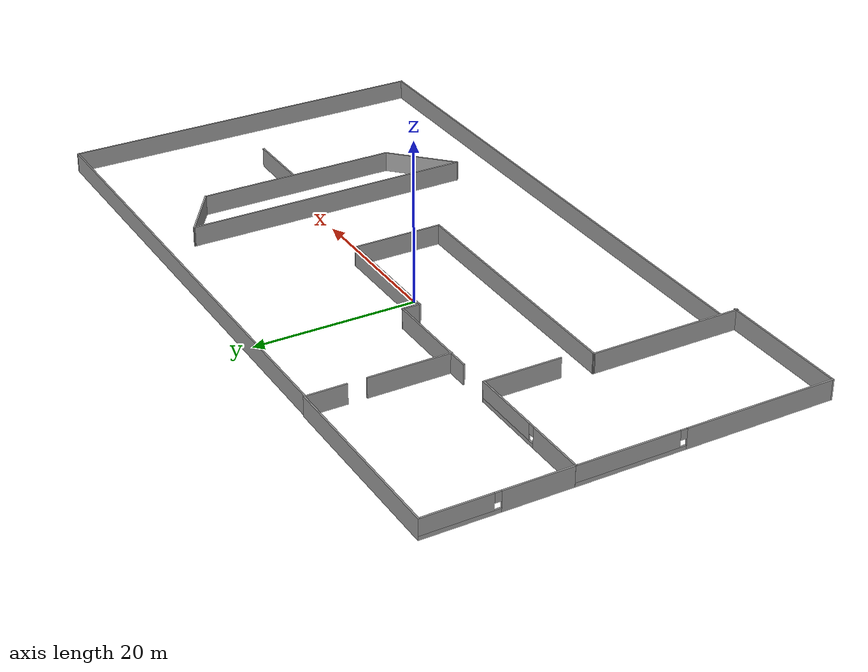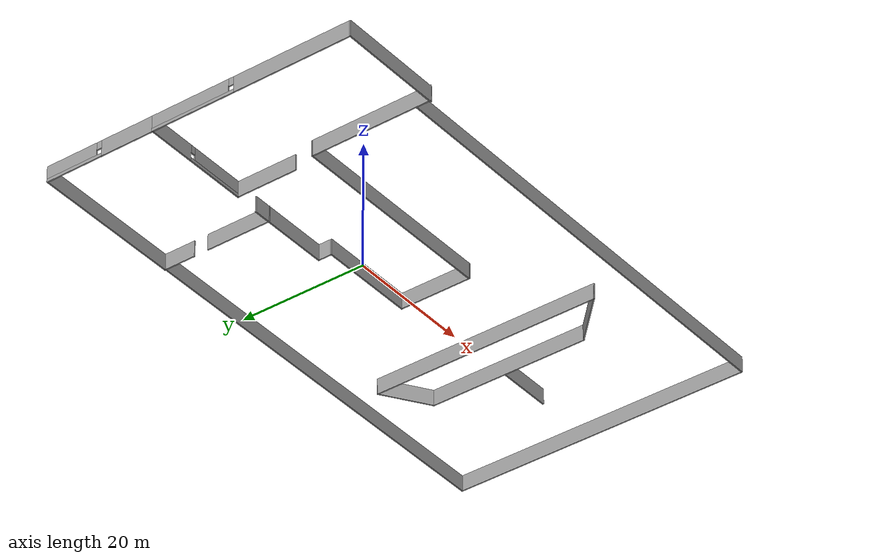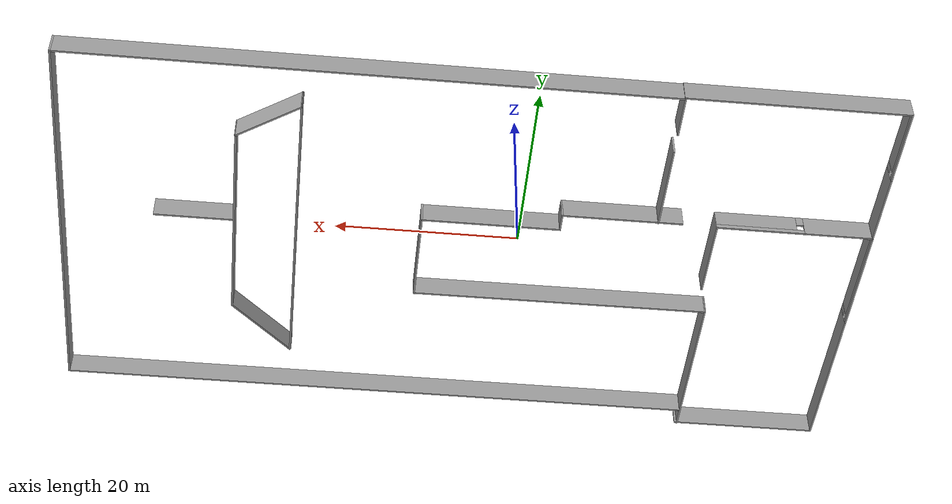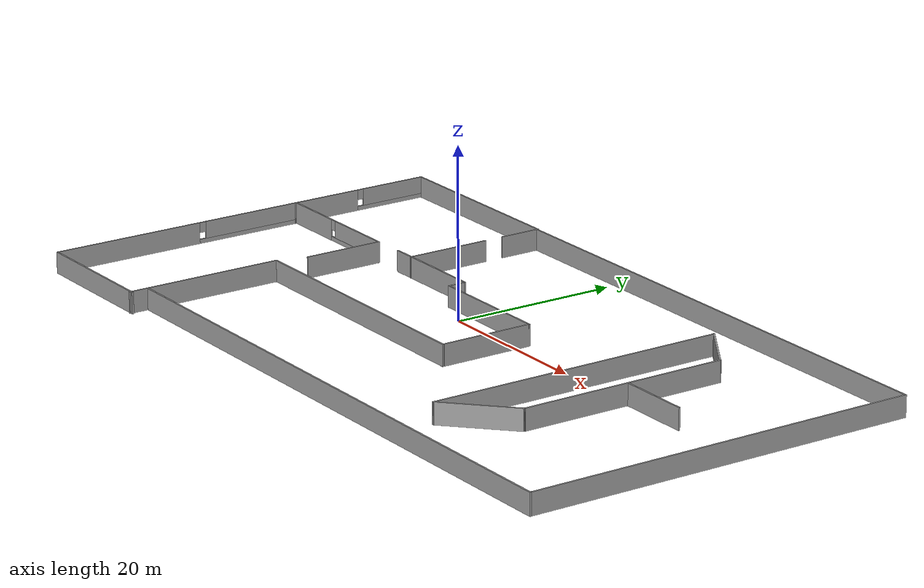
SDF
<?xml version='1.0'?>
<sdf version='1.5'>
  <model name='bunch_of_rooms'>
    <link name='Wall_10'>
      <collision name='Wall_10_Collision'>
        <geometry>
          <box>
            <size>19.0166 0.2 2.5</size>
          </box>
        </geometry>
        <pose>0 0 1.25 0 -0 0</pose>
      </collision>
      <visual name='Wall_10_Visual'>
        <pose>0 0 1.25 0 -0 0</pose>
        <geometry>
          <box>
            <size>19.0166 0.2 2.5</size>
          </box>
        </geometry>
        <material>
          <script>
            <uri>file://media/materials/scripts/gazebo.material</uri>
            <name>Gazebo/Grey</name>
          </script>
        </material>
      </visual>
      <velocity_decay>
        <linear>0</linear>
        <angular>0</angular>
      </velocity_decay>
      <pose>-22.409 -18.5985 0 0 0 -1.5708</pose>
    </link>
    <link name='Wall_12'>
      <collision name='Wall_12_Collision'>
        <geometry>
          <box>
            <size>16.6978 0.2 2.5</size>
          </box>
        </geometry>
        <pose>0 0 1.25 0 -0 0</pose>
      </collision>
      <visual name='Wall_12_Visual'>
        <pose>0 0 1.25 0 -0 0</pose>
        <geometry>
          <box>
            <size>16.6978 0.2 2.5</size>
          </box>
        </geometry>
        <material>
          <script>
            <uri>file://media/materials/scripts/gazebo.material</uri>
            <name>Gazebo/Grey</name>
          </script>
        </material>
      </visual>
      <velocity_decay>
        <linear>0</linear>
        <angular>0</angular>
      </velocity_decay>
      <pose>-30.4115 -27.8648 0 0 -0 3.14159</pose>
    </link>
    <link name='Wall_13'>
      <pose>-38.6604 -12.065 0 0 -0 1.5708</pose>
      <visual name='Wall_13_Visual_0'>
        <pose>-6.61487 0 1.25 0 -0 0</pose>
        <geometry>
          <box>
            <size>18.5698 0.2 2.5</size>
          </box>
        </geometry>
        <material>
          <script>
            <uri>file://media/materials/scripts/gazebo.material</uri>
            <name>Gazebo/Grey</name>
          </script>
        </material>
      </visual>
      <collision name='Wall_13_Collision_0'>
        <geometry>
          <box>
            <size>18.5698 0.2 2.5</size>
          </box>
        </geometry>
        <pose>-6.61487 0 1.25 0 -0 0</pose>
      </collision>
      <visual name='Wall_13_Visual_1'>
        <pose>9.28492 0 0.25 0 -0 0</pose>
        <geometry>
          <box>
            <size>13.2297 0.2 0.5</size>
          </box>
        </geometry>
        <material>
          <script>
            <uri>file://media/materials/scripts/gazebo.material</uri>
            <name>Gazebo/Grey</name>
          </script>
        </material>
      </visual>
      <collision name='Wall_13_Collision_1'>
        <geometry>
          <box>
            <size>13.2297 0.2 0.5</size>
          </box>
        </geometry>
        <pose>9.28492 0 0.25 0 -0 0</pose>
      </collision>
      <visual name='Wall_13_Visual_2'>
        <pose>9.68492 0 1.5 0 -0 0</pose>
        <geometry>
          <box>
            <size>12.4297 0.2 2</size>
          </box>
        </geometry>
        <material>
          <script>
            <uri>file://media/materials/scripts/gazebo.material</uri>
            <name>Gazebo/Grey</name>
          </script>
        </material>
      </visual>
      <collision name='Wall_13_Collision_2'>
        <geometry>
          <box>
            <size>12.4297 0.2 2</size>
          </box>
        </geometry>
        <pose>9.68492 0 1.5 0 -0 0</pose>
      </collision>
      <visual name='Wall_13_Visual_3'>
        <pose>3.07005 0 1.9 0 -0 0</pose>
        <geometry>
          <box>
            <size>0.8 0.2 1.2</size>
          </box>
        </geometry>
        <material>
          <script>
            <uri>file://media/materials/scripts/gazebo.material</uri>
            <name>Gazebo/Grey</name>
          </script>
        </material>
      </visual>
      <collision name='Wall_13_Collision_3'>
        <geometry>
          <box>
            <size>0.8 0.2 1.2</size>
          </box>
        </geometry>
        <pose>3.07005 0 1.9 0 -0 0</pose>
      </collision>
    </link>
    <link name='Wall_14'>
      <pose>-30.0308 3.73475 0 0 -0 0</pose>
      <visual name='Wall_14_Visual_0'>
        <pose>-4.90028 0 1.25 0 -0 0</pose>
        <geometry>
          <box>
            <size>7.65864 0.2 2.5</size>
          </box>
        </geometry>
        <material>
          <script>
            <uri>file://media/materials/scripts/gazebo.material</uri>
            <name>Gazebo/Grey</name>
          </script>
        </material>
      </visual>
      <collision name='Wall_14_Collision_0'>
        <geometry>
          <box>
            <size>7.65864 0.2 2.5</size>
          </box>
        </geometry>
        <pose>-4.90028 0 1.25 0 -0 0</pose>
      </collision>
      <visual name='Wall_14_Visual_1'>
        <pose>3.82932 0 0.25 0 -0 0</pose>
        <geometry>
          <box>
            <size>9.80056 0.2 0.5</size>
          </box>
        </geometry>
        <material>
          <script>
            <uri>file://media/materials/scripts/gazebo.material</uri>
            <name>Gazebo/Grey</name>
          </script>
        </material>
      </visual>
      <collision name='Wall_14_Collision_1'>
        <geometry>
          <box>
            <size>9.80056 0.2 0.5</size>
          </box>
        </geometry>
        <pose>3.82932 0 0.25 0 -0 0</pose>
      </collision>
      <visual name='Wall_14_Visual_2'>
        <pose>4.22932 0 1.5 0 -0 0</pose>
        <geometry>
          <box>
            <size>9.00056 0.2 2</size>
          </box>
        </geometry>
        <material>
          <script>
            <uri>file://media/materials/scripts/gazebo.material</uri>
            <name>Gazebo/Grey</name>
          </script>
        </material>
      </visual>
      <collision name='Wall_14_Collision_2'>
        <geometry>
          <box>
            <size>9.00056 0.2 2</size>
          </box>
        </geometry>
        <pose>4.22932 0 1.5 0 -0 0</pose>
      </collision>
      <visual name='Wall_14_Visual_3'>
        <pose>-0.670956 0 1.9 0 -0 0</pose>
        <geometry>
          <box>
            <size>0.8 0.2 1.2</size>
          </box>
        </geometry>
        <material>
          <script>
            <uri>file://media/materials/scripts/gazebo.material</uri>
            <name>Gazebo/Grey</name>
          </script>
        </material>
      </visual>
      <collision name='Wall_14_Collision_3'>
        <geometry>
          <box>
            <size>0.8 0.2 1.2</size>
          </box>
        </geometry>
        <pose>-0.670956 0 1.9 0 -0 0</pose>
      </collision>
    </link>
    <link name='Wall_15'>
      <collision name='Wall_15_Collision'>
        <geometry>
          <box>
            <size>9.57689 0.2 2.5</size>
          </box>
        </geometry>
        <pose>0 0 1.25 0 -0 0</pose>
      </collision>
      <visual name='Wall_15_Visual'>
        <pose>0 0 1.25 0 -0 0</pose>
        <geometry>
          <box>
            <size>9.57689 0.2 2.5</size>
          </box>
        </geometry>
        <material>
          <script>
            <uri>file://media/materials/scripts/gazebo.material</uri>
            <name>Gazebo/Grey</name>
          </script>
        </material>
      </visual>
      <velocity_decay>
        <linear>0</linear>
        <angular>0</angular>
      </velocity_decay>
      <pose>-21.4012 -0.953695 0 0 0 -1.5708</pose>
    </link>
    <link name='Wall_20'>
      <collision name='Wall_20_Collision'>
        <geometry>
          <box>
            <size>2.20376 0.2 2.5</size>
          </box>
        </geometry>
        <pose>0 0 1.25 0 -0 0</pose>
      </collision>
      <visual name='Wall_20_Visual'>
        <pose>0 0 1.25 0 -0 0</pose>
        <geometry>
          <box>
            <size>2.20376 0.2 2.5</size>
          </box>
        </geometry>
        <material>
          <script>
            <uri>file://media/materials/scripts/gazebo.material</uri>
            <name>Gazebo/Grey</name>
          </script>
        </material>
      </visual>
      <velocity_decay>
        <linear>0</linear>
        <angular>0</angular>
      </velocity_decay>
      <pose>-4.40361 2.86045 0 0 -0 1.5708</pose>
    </link>
    <link name='Wall_21'>
      <collision name='Wall_21_Collision'>
        <geometry>
          <box>
            <size>13.3199 0.2 2.5</size>
          </box>
        </geometry>
        <pose>0 0 1.25 0 -0 0</pose>
      </collision>
      <visual name='Wall_21_Visual'>
        <pose>0 0 1.25 0 -0 0</pose>
        <geometry>
          <box>
            <size>13.3199 0.2 2.5</size>
          </box>
        </geometry>
        <material>
          <script>
            <uri>file://media/materials/scripts/gazebo.material</uri>
            <name>Gazebo/Grey</name>
          </script>
        </material>
      </visual>
      <velocity_decay>
        <linear>0</linear>
        <angular>0</angular>
      </velocity_decay>
      <pose>-10.9635 3.86234 0 0 -0 3.14159</pose>
    </link>
    <link name='Wall_23'>
      <pose>-38.6472 12.3583 0 0 -0 1.5708</pose>
      <visual name='Wall_23_Visual_0'>
        <pose>-4.55377 0 1.25 0 -0 0</pose>
        <geometry>
          <box>
            <size>8.63859 0.2 2.5</size>
          </box>
        </geometry>
        <material>
          <script>
            <uri>file://media/materials/scripts/gazebo.material</uri>
            <name>Gazebo/Grey</name>
          </script>
        </material>
      </visual>
      <collision name='Wall_23_Collision_0'>
        <geometry>
          <box>
            <size>8.63859 0.2 2.5</size>
          </box>
        </geometry>
        <pose>-4.55377 0 1.25 0 -0 0</pose>
      </collision>
      <visual name='Wall_23_Visual_1'>
        <pose>4.3193 0 0.25 0 -0 0</pose>
        <geometry>
          <box>
            <size>9.10753 0.2 0.5</size>
          </box>
        </geometry>
        <material>
          <script>
            <uri>file://media/materials/scripts/gazebo.material</uri>
            <name>Gazebo/Grey</name>
          </script>
        </material>
      </visual>
      <collision name='Wall_23_Collision_1'>
        <geometry>
          <box>
            <size>9.10753 0.2 0.5</size>
          </box>
        </geometry>
        <pose>4.3193 0 0.25 0 -0 0</pose>
      </collision>
      <visual name='Wall_23_Visual_2'>
        <pose>4.71929 0 1.5 0 -0 0</pose>
        <geometry>
          <box>
            <size>8.30753 0.2 2</size>
          </box>
        </geometry>
        <material>
          <script>
            <uri>file://media/materials/scripts/gazebo.material</uri>
            <name>Gazebo/Grey</name>
          </script>
        </material>
      </visual>
      <collision name='Wall_23_Collision_2'>
        <geometry>
          <box>
            <size>8.30753 0.2 2</size>
          </box>
        </geometry>
        <pose>4.71929 0 1.5 0 -0 0</pose>
      </collision>
      <visual name='Wall_23_Visual_3'>
        <pose>0.165529 0 1.9 0 -0 0</pose>
        <geometry>
          <box>
            <size>0.8 0.2 1.2</size>
          </box>
        </geometry>
        <material>
          <script>
            <uri>file://media/materials/scripts/gazebo.material</uri>
            <name>Gazebo/Grey</name>
          </script>
        </material>
      </visual>
      <collision name='Wall_23_Collision_3'>
        <geometry>
          <box>
            <size>0.8 0.2 1.2</size>
          </box>
        </geometry>
        <pose>0.165529 0 1.9 0 -0 0</pose>
      </collision>
    </link>
    <link name='Wall_24'>
      <collision name='Wall_24_Collision'>
        <geometry>
          <box>
            <size>23.9259 0.2 2.5</size>
          </box>
        </geometry>
        <pose>0 0 1.25 0 -0 0</pose>
      </collision>
      <visual name='Wall_24_Visual'>
        <pose>0 0 1.25 0 -0 0</pose>
        <geometry>
          <box>
            <size>23.9259 0.2 2.5</size>
          </box>
        </geometry>
        <material>
          <script>
            <uri>file://media/materials/scripts/gazebo.material</uri>
            <name>Gazebo/Grey</name>
          </script>
        </material>
      </visual>
      <velocity_decay>
        <linear>0</linear>
        <angular>0</angular>
      </velocity_decay>
      <pose>-26.7842 21.1314 0 0 -0 0</pose>
    </link>
    <link name='Wall_25'>
      <collision name='Wall_25_Collision'>
        <geometry>
          <box>
            <size>5.05553 0.2 2.5</size>
          </box>
        </geometry>
        <pose>0 0 1.25 0 -0 0</pose>
      </collision>
      <visual name='Wall_25_Visual'>
        <pose>0 0 1.25 0 -0 0</pose>
        <geometry>
          <box>
            <size>5.05553 0.2 2.5</size>
          </box>
        </geometry>
        <material>
          <script>
            <uri>file://media/materials/scripts/gazebo.material</uri>
            <name>Gazebo/Grey</name>
          </script>
        </material>
      </visual>
      <velocity_decay>
        <linear>0</linear>
        <angular>0</angular>
      </velocity_decay>
      <pose>-14.9213 18.7036 0 0 0 -1.5708</pose>
    </link>
    <link name='Wall_27'>
      <collision name='Wall_27_Collision'>
        <geometry>
          <box>
            <size>10.2421 0.2 2.5</size>
          </box>
        </geometry>
        <pose>0 0 1.25 0 -0 0</pose>
      </collision>
      <visual name='Wall_27_Visual'>
        <pose>0 0 1.25 0 -0 0</pose>
        <geometry>
          <box>
            <size>10.2421 0.2 2.5</size>
          </box>
        </geometry>
        <material>
          <script>
            <uri>file://media/materials/scripts/gazebo.material</uri>
            <name>Gazebo/Grey</name>
          </script>
        </material>
      </visual>
      <velocity_decay>
        <linear>0</linear>
        <angular>0</angular>
      </velocity_decay>
      <pose>-14.9213 8.82702 0 0 0 -1.5708</pose>
    </link>
    <link name='Wall_29'>
      <collision name='Wall_29_Collision'>
        <geometry>
          <box>
            <size>64.7565 0.2 2.5</size>
          </box>
        </geometry>
        <pose>0 0 1.25 0 -0 0</pose>
      </collision>
      <visual name='Wall_29_Visual'>
        <pose>0 0 1.25 0 -0 0</pose>
        <geometry>
          <box>
            <size>64.7565 0.2 2.5</size>
          </box>
        </geometry>
        <material>
          <script>
            <uri>file://media/materials/scripts/gazebo.material</uri>
            <name>Gazebo/Grey</name>
          </script>
        </material>
      </visual>
      <velocity_decay>
        <linear>0</linear>
        <angular>0</angular>
      </velocity_decay>
      <pose>17.4673 21.021 0 0 -0 0</pose>
    </link>
    <link name='Wall_30'>
      <collision name='Wall_30_Collision'>
        <geometry>
          <box>
            <size>46.9897 0.2 2.5</size>
          </box>
        </geometry>
        <pose>0 0 1.25 0 -0 0</pose>
      </collision>
      <visual name='Wall_30_Visual'>
        <pose>0 0 1.25 0 -0 0</pose>
        <geometry>
          <box>
            <size>46.9897 0.2 2.5</size>
          </box>
        </geometry>
        <material>
          <script>
            <uri>file://media/materials/scripts/gazebo.material</uri>
            <name>Gazebo/Grey</name>
          </script>
        </material>
      </visual>
      <velocity_decay>
        <linear>0</linear>
        <angular>0</angular>
      </velocity_decay>
      <pose>49.7455 -2.37381 0 0 0 -1.5708</pose>
    </link>
    <link name='Wall_31'>
      <collision name='Wall_31_Collision'>
        <geometry>
          <box>
            <size>72.1501 0.2 2.5</size>
          </box>
        </geometry>
        <pose>0 0 1.25 0 -0 0</pose>
      </collision>
      <visual name='Wall_31_Visual'>
        <pose>0 0 1.25 0 -0 0</pose>
        <geometry>
          <box>
            <size>72.1501 0.2 2.5</size>
          </box>
        </geometry>
        <material>
          <script>
            <uri>file://media/materials/scripts/gazebo.material</uri>
            <name>Gazebo/Grey</name>
          </script>
        </material>
      </visual>
      <velocity_decay>
        <linear>0</linear>
        <angular>0</angular>
      </velocity_decay>
      <pose>13.7705 -25.7686 0 0 -0 3.14159</pose>
    </link>
    <link name='Wall_33'>
      <collision name='Wall_33_Collision'>
        <geometry>
          <box>
            <size>25.1398 0.2 2.5</size>
          </box>
        </geometry>
        <pose>0 0 1.25 0 -0 0</pose>
      </collision>
      <visual name='Wall_33_Visual'>
        <pose>0 0 1.25 0 -0 0</pose>
        <geometry>
          <box>
            <size>25.1398 0.2 2.5</size>
          </box>
        </geometry>
        <material>
          <script>
            <uri>file://media/materials/scripts/gazebo.material</uri>
            <name>Gazebo/Grey</name>
          </script>
        </material>
      </visual>
      <velocity_decay>
        <linear>0</linear>
        <angular>0</angular>
      </velocity_decay>
      <pose>30.9855 -0.718515 0 0 0 -1.5708</pose>
    </link>
    <link name='Wall_34'>
      <collision name='Wall_34_Collision'>
        <geometry>
          <box>
            <size>9.56506 0.2 2.5</size>
          </box>
        </geometry>
        <pose>0 0 1.25 0 -0 0</pose>
      </collision>
      <visual name='Wall_34_Visual'>
        <pose>0 0 1.25 0 -0 0</pose>
        <geometry>
          <box>
            <size>9.56506 0.2 2.5</size>
          </box>
        </geometry>
        <material>
          <script>
            <uri>file://media/materials/scripts/gazebo.material</uri>
            <name>Gazebo/Grey</name>
          </script>
        </material>
      </visual>
      <velocity_decay>
        <linear>0</linear>
        <angular>0</angular>
      </velocity_decay>
      <pose>27.6198 -16.4438 0 0 0 -2.37286</pose>
    </link>
    <link name='Wall_35'>
      <collision name='Wall_35_Collision'>
        <geometry>
          <box>
            <size>36.0647 0.2 2.5</size>
          </box>
        </geometry>
        <pose>0 0 1.25 0 -0 0</pose>
      </collision>
      <visual name='Wall_35_Visual'>
        <pose>0 0 1.25 0 -0 0</pose>
        <geometry>
          <box>
            <size>36.0647 0.2 2.5</size>
          </box>
        </geometry>
        <material>
          <script>
            <uri>file://media/materials/scripts/gazebo.material</uri>
            <name>Gazebo/Grey</name>
          </script>
        </material>
      </visual>
      <velocity_decay>
        <linear>0</linear>
        <angular>0</angular>
      </velocity_decay>
      <pose>24.254 -1.76687 0 0 -0 1.5708</pose>
    </link>
    <link name='Wall_36'>
      <collision name='Wall_36_Collision'>
        <geometry>
          <box>
            <size>8.24972 0.2 2.5</size>
          </box>
        </geometry>
        <pose>0 0 1.25 0 -0 0</pose>
      </collision>
      <visual name='Wall_36_Visual'>
        <pose>0 0 1.25 0 -0 0</pose>
        <geometry>
          <box>
            <size>8.24972 0.2 2.5</size>
          </box>
        </geometry>
        <material>
          <script>
            <uri>file://media/materials/scripts/gazebo.material</uri>
            <name>Gazebo/Grey</name>
          </script>
        </material>
      </visual>
      <velocity_decay>
        <linear>0</linear>
        <angular>0</angular>
      </velocity_decay>
      <pose>27.6198 13.9584 0 0 0 -0.580398</pose>
    </link>
    <link name='Wall_38'>
      <collision name='Wall_38_Collision'>
        <geometry>
          <box>
            <size>8.58682 0.2 2.5</size>
          </box>
        </geometry>
        <pose>0 0 1.25 0 -0 0</pose>
      </collision>
      <visual name='Wall_38_Visual'>
        <pose>0 0 1.25 0 -0 0</pose>
        <geometry>
          <box>
            <size>8.58682 0.2 2.5</size>
          </box>
        </geometry>
        <material>
          <script>
            <uri>file://media/materials/scripts/gazebo.material</uri>
            <name>Gazebo/Grey</name>
          </script>
        </material>
      </visual>
      <velocity_decay>
        <linear>0</linear>
        <angular>0</angular>
      </velocity_decay>
      <pose>35.3997 -0.16675 0 0 -0 0</pose>
    </link>
    <link name='Wall_7'>
      <collision name='Wall_7_Collision'>
        <geometry>
          <box>
            <size>15.3024 0.2 2.5</size>
          </box>
        </geometry>
        <pose>0 0 1.25 0 -0 0</pose>
      </collision>
      <visual name='Wall_7_Visual'>
        <pose>0 0 1.25 0 -0 0</pose>
        <geometry>
          <box>
            <size>15.3024 0.2 2.5</size>
          </box>
        </geometry>
        <material>
          <script>
            <uri>file://media/materials/scripts/gazebo.material</uri>
            <name>Gazebo/Grey</name>
          </script>
        </material>
      </visual>
      <velocity_decay>
        <linear>0</linear>
        <angular>0</angular>
      </velocity_decay>
      <pose>3.1384 1.77635 0 0 -0 0</pose>
    </link>
    <link name='Wall_8'>
      <collision name='Wall_8_Collision'>
        <geometry>
          <box>
            <size>11.2935 0.2 2.5</size>
          </box>
        </geometry>
        <pose>0 0 1.25 0 -0 0</pose>
      </collision>
      <visual name='Wall_8_Visual'>
        <pose>0 0 1.25 0 -0 0</pose>
        <geometry>
          <box>
            <size>11.2935 0.2 2.5</size>
          </box>
        </geometry>
        <material>
          <script>
            <uri>file://media/materials/scripts/gazebo.material</uri>
            <name>Gazebo/Grey</name>
          </script>
        </material>
      </visual>
      <velocity_decay>
        <linear>0</linear>
        <angular>0</angular>
      </velocity_decay>
      <pose>10.6896 -3.77039 0 0 0 -1.5708</pose>
    </link>
    <link name='Wall_9'>
      <collision name='Wall_9_Collision'>
        <geometry>
          <box>
            <size>33.2986 0.2 2.5</size>
          </box>
        </geometry>
        <pose>0 0 1.25 0 -0 0</pose>
      </collision>
      <visual name='Wall_9_Visual'>
        <pose>0 0 1.25 0 -0 0</pose>
        <geometry>
          <box>
            <size>33.2986 0.2 2.5</size>
          </box>
        </geometry>
        <material>
          <script>
            <uri>file://media/materials/scripts/gazebo.material</uri>
            <name>Gazebo/Grey</name>
          </script>
        </material>
      </visual>
      <velocity_decay>
        <linear>0</linear>
        <angular>0</angular>
      </velocity_decay>
      <pose>-5.85972 -9.25368 0 0 -0 3.13776</pose>
    </link>
    <static>1</static>
  </model>
</sdf>
